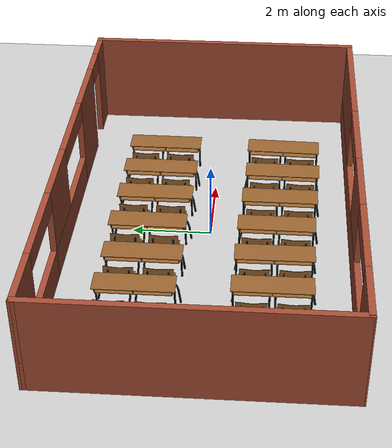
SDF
<sdf version="1.6">
 <world name="default">
  <light name="sun" type="directional">
   <pose>0 0 10 0 -0 0</pose>
   <diffuse>0.8 0.8 0.8 1</diffuse>
   <specular>0.2 0.2 0.2 1</specular>
   <attenuation>
    <range>1000</range>
    <constant>0.9</constant>
    <linear>0.01</linear>
    <quadratic>0.001</quadratic>
   </attenuation>
   <direction>-0.5 0.1 -0.9</direction>
  </light>
  <model name="ground_plane">
   <static>1</static>
   <link name="link">
    <collision name="collision">
     <geometry><plane><normal>0 0 1</normal><size>100 100</size></plane></geometry>
     <surface>
      <contact><collide_bitmask>65535</collide_bitmask></contact>
      <friction><ode><mu>100</mu><mu2>50</mu2></ode></friction>
     </surface>
    </collision>
    <visual name="visual">
     <cast_shadows>0</cast_shadows>
     <geometry><plane><normal>0 0 1</normal><size>100 100</size></plane></geometry>
     <material>
      <script><uri>file://media/materials/scripts/gazebo.material</uri><name>Gazebo/Grey</name></script>
     </material>
    </visual>
   </link>
  </model>
  <gravity>0 0 -9.8</gravity>
  <magnetic_field>6e-06 2.3e-05 -4.2e-05</magnetic_field>
  <atmosphere type="adiabatic"/>
  <physics name="default_physics" default="0" type="ode">
   <max_step_size>0.001</max_step_size>
   <real_time_factor>1</real_time_factor>
   <real_time_update_rate>1000</real_time_update_rate>
  </physics>
  <scene><ambient>0.4 0.4 0.4 1</ambient><background>0.7 0.7 0.7 1</background><shadows>1</shadows></scene>
  <audio><device>default</device></audio>
  <spherical_coordinates>
   <surface_model>EARTH_WGS84</surface_model>
   <latitude_deg>0</latitude_deg>
   <longitude_deg>0</longitude_deg>
   <elevation>0</elevation>
   <heading_deg>0</heading_deg>
  </spherical_coordinates>
  <model name="classroom">
   <pose>0.054901 0.0317 0 0 -0 0</pose>
   <link name="Wall_1">
    <pose>0.0155 -3.594 0 0 -0 0</pose>
    <visual name="Wall_1_Visual_0">
     <pose>-4.96887 0 1.25 0 -0 0</pose>
     <geometry><box><size>1.5749 0.15 2.5</size></box></geometry>
     <material>
      <script><uri>file://media/materials/scripts/gazebo.material</uri><name>Gazebo/Bricks</name></script>
      <ambient>1 1 1 1</ambient>
     </material>
     <meta><layer>0</layer></meta>
    </visual>
    <collision name="Wall_1_Collision_0">
     <geometry><box><size>1.5749 0.15 2.5</size></box></geometry>
     <pose>-4.96887 0 1.25 0 -0 0</pose>
    </collision>
    <visual name="Wall_1_Visual_1">
     <pose>0.787451 0 0.4 0 -0 0</pose>
     <geometry><box><size>9.93773 0.15 0.8</size></box></geometry>
     <material>
      <script><uri>file://media/materials/scripts/gazebo.material</uri><name>Gazebo/Bricks</name></script>
      <ambient>1 1 1 1</ambient>
     </material>
     <meta><layer>0</layer></meta>
    </visual>
    <collision name="Wall_1_Collision_1">
     <geometry><box><size>9.93773 0.15 0.8</size></box></geometry>
     <pose>0.787451 0 0.4 0 -0 0</pose>
    </collision>
    <visual name="Wall_1_Visual_2">
     <pose>-1.04716 0 1.65 0 -0 0</pose>
     <geometry><box><size>1.8685 0.15 1.7</size></box></geometry>
     <material>
      <script><uri>file://media/materials/scripts/gazebo.material</uri><name>Gazebo/Bricks</name></script>
      <ambient>1 1 1 1</ambient>
     </material>
     <meta><layer>0</layer></meta>
    </visual>
    <collision name="Wall_1_Collision_2">
     <geometry><box><size>1.8685 0.15 1.7</size></box></geometry>
     <pose>-1.04716 0 1.65 0 -0 0</pose>
    </collision>
    <visual name="Wall_1_Visual_3">
     <pose>3.9217 0 1.65 0 -0 0</pose>
     <geometry><box><size>3.66923 0.15 1.7</size></box></geometry>
     <material>
      <script><uri>file://media/materials/scripts/gazebo.material</uri><name>Gazebo/Bricks</name></script>
      <ambient>1 1 1 1</ambient>
     </material>
     <meta><layer>0</layer></meta>
    </visual>
    <collision name="Wall_1_Collision_3">
     <geometry><box><size>3.66923 0.15 1.7</size></box></geometry>
     <pose>3.9217 0 1.65 0 -0 0</pose>
    </collision>
    <visual name="Wall_1_Visual_4">
     <pose>-3.08141 0 2.25 0 -0 0</pose>
     <geometry><box><size>2.2 0.15 0.5</size></box></geometry>
     <material>
      <script><uri>file://media/materials/scripts/gazebo.material</uri><name>Gazebo/Bricks</name></script>
      <ambient>1 1 1 1</ambient>
     </material>
     <meta><layer>0</layer></meta>
    </visual>
    <collision name="Wall_1_Collision_4">
     <geometry><box><size>2.2 0.15 0.5</size></box></geometry>
     <pose>-3.08141 0 2.25 0 -0 0</pose>
    </collision>
    <visual name="Wall_1_Visual_5">
     <pose>0.987086 0 2.25 0 -0 0</pose>
     <geometry><box><size>2.2 0.15 0.5</size></box></geometry>
     <material>
      <script><uri>file://media/materials/scripts/gazebo.material</uri><name>Gazebo/Bricks</name></script>
      <ambient>1 1 1 1</ambient>
     </material>
     <meta><layer>0</layer></meta>
    </visual>
    <collision name="Wall_1_Collision_5">
     <geometry><box><size>2.2 0.15 0.5</size></box></geometry>
     <pose>0.987086 0 2.25 0 -0 0</pose>
    </collision>
   </link>
   <link name="Wall_2">
    <collision name="Wall_2_Collision">
     <geometry><box><size>7.3079 0.15 2.5</size></box></geometry>
     <pose>0 0 1.25 0 -0 0</pose>
    </collision>
    <visual name="Wall_2_Visual">
     <pose>0 0 1.25 0 -0 0</pose>
     <geometry><box><size>7.3079 0.15 2.5</size></box></geometry>
     <material>
      <script><uri>file://media/materials/scripts/gazebo.material</uri><name>Gazebo/Bricks</name></script>
      <ambient>1 1 1 1</ambient>
     </material>
     <meta><layer>0</layer></meta>
    </visual>
    <pose>5.6815 -0.015 0 0 -0 1.57513</pose>
   </link>
   <link name="Wall_3">
    <pose>-0.0155 3.579 0 0 -0 3.13895</pose>
    <visual name="Wall_3_Visual_0">
     <pose>-5.2624 0 1.25 0 -0 0</pose>
     <geometry><box><size>0.988408 0.15 2.5</size></box></geometry>
     <material>
      <script><uri>file://media/materials/scripts/gazebo.material</uri><name>Gazebo/Bricks</name></script>
      <ambient>1 1 1 1</ambient>
     </material>
     <meta><layer>0</layer></meta>
    </visual>
    <collision name="Wall_3_Collision_0">
     <geometry><box><size>0.988408 0.15 2.5</size></box></geometry>
     <pose>-5.2624 0 1.25 0 -0 0</pose>
    </collision>
    <visual name="Wall_3_Visual_1">
     <pose>-2.94723 0 1.25 0 -0 0</pose>
     <geometry><box><size>1.84192 0.15 2.5</size></box></geometry>
     <material>
      <script><uri>file://media/materials/scripts/gazebo.material</uri><name>Gazebo/Bricks</name></script>
      <ambient>1 1 1 1</ambient>
     </material>
     <meta><layer>0</layer></meta>
    </visual>
    <collision name="Wall_3_Collision_1">
     <geometry><box><size>1.84192 0.15 2.5</size></box></geometry>
     <pose>-2.94723 0 1.25 0 -0 0</pose>
    </collision>
    <visual name="Wall_3_Visual_2">
     <pose>-0.007606 0 0.4 0 -0 0</pose>
     <geometry><box><size>4.03733 0.15 0.8</size></box></geometry>
     <material>
      <script><uri>file://media/materials/scripts/gazebo.material</uri><name>Gazebo/Bricks</name></script>
      <ambient>1 1 1 1</ambient>
     </material>
     <meta><layer>0</layer></meta>
    </visual>
    <collision name="Wall_3_Collision_2">
     <geometry><box><size>4.03733 0.15 0.8</size></box></geometry>
     <pose>-0.007606 0 0.4 0 -0 0</pose>
    </collision>
    <visual name="Wall_3_Visual_3">
     <pose>3.88383 0 0.4 0 -0 0</pose>
     <geometry><box><size>3.74554 0.15 0.8</size></box></geometry>
     <material>
      <script><uri>file://media/materials/scripts/gazebo.material</uri><name>Gazebo/Bricks</name></script>
      <ambient>1 1 1 1</ambient>
     </material>
     <meta><layer>0</layer></meta>
    </visual>
    <collision name="Wall_3_Collision_3">
     <geometry><box><size>3.74554 0.15 0.8</size></box></geometry>
     <pose>3.88383 0 0.4 0 -0 0</pose>
    </collision>
    <visual name="Wall_3_Visual_4">
     <pose>4.98383 0 1.65 0 -0 0</pose>
     <geometry><box><size>1.54554 0.15 1.7</size></box></geometry>
     <material>
      <script><uri>file://media/materials/scripts/gazebo.material</uri><name>Gazebo/Bricks</name></script>
      <ambient>1 1 1 1</ambient>
     </material>
     <meta><layer>0</layer></meta>
    </visual>
    <collision name="Wall_3_Collision_4">
     <geometry><box><size>1.54554 0.15 1.7</size></box></geometry>
     <pose>4.98383 0 1.65 0 -0 0</pose>
    </collision>
    <visual name="Wall_3_Visual_5">
     <pose>1.09239 0 1.65 0 -0 0</pose>
     <geometry><box><size>1.83733 0.15 1.7</size></box></geometry>
     <material>
      <script><uri>file://media/materials/scripts/gazebo.material</uri><name>Gazebo/Bricks</name></script>
      <ambient>1 1 1 1</ambient>
     </material>
     <meta><layer>0</layer></meta>
    </visual>
    <collision name="Wall_3_Collision_5">
     <geometry><box><size>1.83733 0.15 1.7</size></box></geometry>
     <pose>1.09239 0 1.65 0 -0 0</pose>
    </collision>
    <visual name="Wall_3_Visual_6">
     <pose>1.09239 0 1.65 0 -0 0</pose>
     <geometry><box><size>1.83733 0.15 1.7</size></box></geometry>
     <material>
      <script><uri>file://media/materials/scripts/gazebo.material</uri><name>Gazebo/Bricks</name></script>
      <ambient>1 1 1 1</ambient>
     </material>
     <meta><layer>0</layer></meta>
    </visual>
    <collision name="Wall_3_Collision_6">
     <geometry><box><size>1.83733 0.15 1.7</size></box></geometry>
     <pose>1.09239 0 1.65 0 -0 0</pose>
    </collision>
    <visual name="Wall_3_Visual_7">
     <pose>3.11106 0 2.25 0 -0 0</pose>
     <geometry><box><size>2.2 0.15 0.5</size></box></geometry>
     <material>
      <script><uri>file://media/materials/scripts/gazebo.material</uri><name>Gazebo/Bricks</name></script>
      <ambient>1 1 1 1</ambient>
     </material>
     <meta><layer>0</layer></meta>
    </visual>
    <collision name="Wall_3_Collision_7">
     <geometry><box><size>2.2 0.15 0.5</size></box></geometry>
     <pose>3.11106 0 2.25 0 -0 0</pose>
    </collision>
    <visual name="Wall_3_Visual_8">
     <pose>3.11106 0 2.25 0 -0 0</pose>
     <geometry><box><size>2.2 0.15 0.5</size></box></geometry>
     <material>
      <script><uri>file://media/materials/scripts/gazebo.material</uri><name>Gazebo/Bricks</name></script>
      <ambient>1 1 1 1</ambient>
     </material>
     <meta><layer>0</layer></meta>
    </visual>
    <collision name="Wall_3_Collision_8">
     <geometry><box><size>2.2 0.15 0.5</size></box></geometry>
     <pose>3.11106 0 2.25 0 -0 0</pose>
    </collision>
    <visual name="Wall_3_Visual_9">
     <pose>-4.31819 0 2.25 0 -0 0</pose>
     <geometry><box><size>0.9 0.15 0.5</size></box></geometry>
     <material>
      <script><uri>file://media/materials/scripts/gazebo.material</uri><name>Gazebo/Bricks</name></script>
      <ambient>1 1 1 1</ambient>
     </material>
     <meta><layer>0</layer></meta>
    </visual>
    <collision name="Wall_3_Collision_9">
     <geometry><box><size>0.9 0.15 0.5</size></box></geometry>
     <pose>-4.31819 0 2.25 0 -0 0</pose>
    </collision>
    <visual name="Wall_3_Visual_10">
     <pose>-0.926271 0 2.25 0 -0 0</pose>
     <geometry><box><size>2.2 0.15 0.5</size></box></geometry>
     <material>
      <script><uri>file://media/materials/scripts/gazebo.material</uri><name>Gazebo/Bricks</name></script>
      <ambient>1 1 1 1</ambient>
     </material>
     <meta><layer>0</layer></meta>
    </visual>
    <collision name="Wall_3_Collision_10">
     <geometry><box><size>2.2 0.15 0.5</size></box></geometry>
     <pose>-0.926271 0 2.25 0 -0 0</pose>
    </collision>
   </link>
   <link name="Wall_4">
    <collision name="Wall_4_Collision">
     <geometry><box><size>7.33871 0.15 2.5</size></box></geometry>
     <pose>0 0 1.25 0 -0 0</pose>
    </collision>
    <visual name="Wall_4_Visual">
     <pose>0 0 1.25 0 -0 0</pose>
     <geometry><box><size>7.33871 0.15 2.5</size></box></geometry>
     <material>
      <script><uri>file://media/materials/scripts/gazebo.material</uri><name>Gazebo/Bricks</name></script>
      <ambient>1 1 1 1</ambient>
     </material>
     <meta><layer>0</layer></meta>
    </visual>
    <pose>-5.6815 -0 0 0 -0 -1.56648</pose>
   </link>
   <static>1</static>
  </model>
  <model name="classroom_table_clone">
   <static>1</static>
   <link name="link">
    <collision name="collision">
     <geometry><mesh><uri>model://classroom_table/meshes/classroom_table.dae</uri></mesh></geometry>
    </collision>
    <visual name="visual">
     <geometry><mesh><uri>model://classroom_table/meshes/classroom_table.dae</uri></mesh></geometry>
    </visual>
   </link>
   <pose>-1.36909 1.51526 0 0 -0 1.56914</pose>
  </model>
  <model name="classroom_table_clone_0">
   <static>1</static>
   <link name="link">
    <collision name="collision">
     <geometry><mesh><uri>model://classroom_table/meshes/classroom_table.dae</uri></mesh></geometry>
    </collision>
    <visual name="visual">
     <geometry><mesh><uri>model://classroom_table/meshes/classroom_table.dae</uri></mesh></geometry>
    </visual>
   </link>
   <pose>-0.15981 1.45846 0 0 -0 1.57358</pose>
  </model>
  <model name="classroom_table_clone_1">
   <static>1</static>
   <link name="link">
    <collision name="collision">
     <geometry><mesh><uri>model://classroom_table/meshes/classroom_table.dae</uri></mesh></geometry>
    </collision>
    <visual name="visual">
     <geometry><mesh><uri>model://classroom_table/meshes/classroom_table.dae</uri></mesh></geometry>
    </visual>
   </link>
   <pose>2.1869 1.4326 0 0 -0 1.56769</pose>
  </model>
  <model name="classroom_table_clone_2">
   <static>1</static>
   <link name="link">
    <collision name="collision">
     <geometry><mesh><uri>model://classroom_table/meshes/classroom_table.dae</uri></mesh></geometry>
    </collision>
    <visual name="visual">
     <geometry><mesh><uri>model://classroom_table/meshes/classroom_table.dae</uri></mesh></geometry>
    </visual>
   </link>
   <pose>-2.61158 1.50222 0 0 -0 1.5666</pose>
  </model>
  <model name="classroom_table_clone_3">
   <static>1</static>
   <link name="link">
    <collision name="collision">
     <geometry><mesh><uri>model://classroom_table/meshes/classroom_table.dae</uri></mesh></geometry>
    </collision>
    <visual name="visual">
     <geometry><mesh><uri>model://classroom_table/meshes/classroom_table.dae</uri></mesh></geometry>
    </visual>
   </link>
   <pose>-3.77875 1.54841 0 0 -0 1.57422</pose>
  </model>
  <model name="classroom_table_clone_4">
   <static>1</static>
   <link name="link">
    <collision name="collision">
     <geometry><mesh><uri>model://classroom_table/meshes/classroom_table.dae</uri></mesh></geometry>
    </collision>
    <visual name="visual">
     <geometry><mesh><uri>model://classroom_table/meshes/classroom_table.dae</uri></mesh></geometry>
    </visual>
   </link>
   <pose>2.15507 -1.76746 0 0 -0 1.54697</pose>
  </model>
  <model name="classroom_table_clone_5">
   <static>1</static>
   <link name="link">
    <collision name="collision">
     <geometry><mesh><uri>model://classroom_table/meshes/classroom_table.dae</uri></mesh></geometry>
    </collision>
    <visual name="visual">
     <geometry><mesh><uri>model://classroom_table/meshes/classroom_table.dae</uri></mesh></geometry>
    </visual>
   </link>
   <pose>1.00435 1.44702 0 0 -0 1.56637</pose>
  </model>
  <model name="classroom_table_clone_6">
   <static>1</static>
   <link name="link">
    <collision name="collision">
     <geometry><mesh><uri>model://classroom_table/meshes/classroom_table.dae</uri></mesh></geometry>
    </collision>
    <visual name="visual">
     <geometry><mesh><uri>model://classroom_table/meshes/classroom_table.dae</uri></mesh></geometry>
    </visual>
   </link>
   <pose>0.998129 -1.76597 0 0 -0 1.56346</pose>
  </model>
  <model name="classroom_table_clone_7">
   <static>1</static>
   <link name="link">
    <collision name="collision">
     <geometry><mesh><uri>model://classroom_table/meshes/classroom_table.dae</uri></mesh></geometry>
    </collision>
    <visual name="visual">
     <geometry><mesh><uri>model://classroom_table/meshes/classroom_table.dae</uri></mesh></geometry>
    </visual>
   </link>
   <pose>-0.16356 -1.72037 0 0 -0 1.56986</pose>
  </model>
  <model name="classroom_table_clone_8">
   <static>1</static>
   <link name="link">
    <collision name="collision">
     <geometry><mesh><uri>model://classroom_table/meshes/classroom_table.dae</uri></mesh></geometry>
    </collision>
    <visual name="visual">
     <geometry><mesh><uri>model://classroom_table/meshes/classroom_table.dae</uri></mesh></geometry>
    </visual>
   </link>
   <pose>-3.64132 -1.61443 0 0 -0 1.57642</pose>
  </model>
  <model name="classroom_table_clone_9">
   <static>1</static>
   <link name="link">
    <collision name="collision">
     <geometry><mesh><uri>model://classroom_table/meshes/classroom_table.dae</uri></mesh></geometry>
    </collision>
    <visual name="visual">
     <geometry><mesh><uri>model://classroom_table/meshes/classroom_table.dae</uri></mesh></geometry>
    </visual>
   </link>
   <pose>-2.4823 -1.64282 0 0 -0 1.57998</pose>
  </model>
  <model name="classroom_table_clone_10">
   <static>1</static>
   <link name="link">
    <collision name="collision">
     <geometry><mesh><uri>model://classroom_table/meshes/classroom_table.dae</uri></mesh></geometry>
    </collision>
    <visual name="visual">
     <geometry><mesh><uri>model://classroom_table/meshes/classroom_table.dae</uri></mesh></geometry>
    </visual>
   </link>
   <pose>-1.32438 -1.65795 0 0 -0 1.56586</pose>
  </model>
  <model name="classroom_table_clone_clone">
   <static>1</static>
   <link name="link">
    <collision name="collision">
     <geometry><mesh><uri>model://classroom_table/meshes/classroom_table.dae</uri></mesh></geometry>
    </collision>
    <visual name="visual">
     <geometry><mesh><uri>model://classroom_table/meshes/classroom_table.dae</uri></mesh></geometry>
    </visual>
   </link>
   <pose>-5.00053 1.47869 0 0 -0 1.56963</pose>
  </model>
  <model name="classroom_table_clone_8_clone">
   <static>1</static>
   <link name="link">
    <collision name="collision">
     <geometry><mesh><uri>model://classroom_table/meshes/classroom_table.dae</uri></mesh></geometry>
    </collision>
    <visual name="visual">
     <geometry><mesh><uri>model://classroom_table/meshes/classroom_table.dae</uri></mesh></geometry>
    </visual>
   </link>
   <pose>-4.89507 -1.56096 0 0 -0 1.57642</pose>
  </model>
 </world>
</sdf>
